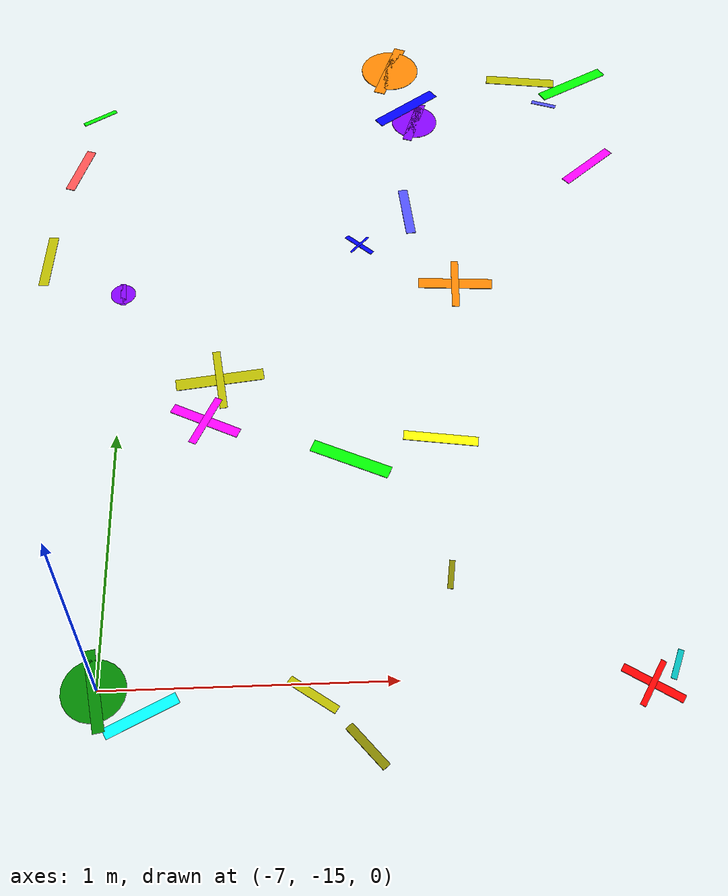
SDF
<sdf version="1.6">
 <world name="default">
  <model name="letter_S_634">
   <static>true</static>
   <pose>-6.85 -15.09 0.003 0 0 0.463</pose>
   <link name="link">
    <visual name="visual">
     <geometry><box><size>0.26 0.04 0.002</size></box></geometry>
     <material>
      <ambient>0.0 1.0 1.0 1</ambient>
      <diffuse>0.0 1.0 1.0 1</diffuse>
      <specular>0.1 0.1 0.1 1</specular>
     </material>
    </visual>
   </link>
  </model>
  <model name="letter_C_635">
   <static>true</static>
   <pose>-7.01 -15.00 0.003 0 0 1.755</pose>
   <link name="link">
    <visual name="visual">
     <geometry><box><size>0.29 0.04 0.002</size></box></geometry>
     <material>
      <ambient>0.0 0.5 0.0 1</ambient>
      <diffuse>0.0 0.5 0.0 1</diffuse>
      <specular>0.1 0.1 0.1 1</specular>
     </material>
    </visual>
    <visual name="visual2">
     <geometry><cylinder><radius>0.11</radius><length>0.002</length></cylinder></geometry>
     <material><ambient>0.0 0.5 0.0 1</ambient><diffuse>0.0 0.5 0.0 1</diffuse></material>
    </visual>
   </link>
  </model>
  <model name="letter_T_636">
   <static>true</static>
   <pose>-6.67 -13.95 0.011 0 0 5.831</pose>
   <link name="link">
    <visual name="visual">
     <geometry><box><size>0.28 0.04 0.002</size></box></geometry>
     <material>
      <ambient>1.0 0.0 1.0 1</ambient>
      <diffuse>1.0 0.0 1.0 1</diffuse>
      <specular>0.1 0.1 0.1 1</specular>
     </material>
    </visual>
    <visual name="visual2">
     <pose>0 0 0.001 0 0 1.57</pose>
     <geometry><box><size>0.22 0.03 0.001</size></box></geometry>
     <material><ambient>1.0 0.0 1.0 1</ambient><diffuse>1.0 0.0 1.0 1</diffuse></material>
    </visual>
   </link>
  </model>
  <model name="letter_A_637">
   <static>true</static>
   <pose>-6.62 -13.76 0.009 0 0 3.270</pose>
   <link name="link">
    <visual name="visual">
     <geometry><box><size>0.34 0.05 0.002</size></box></geometry>
     <material>
      <ambient>0.7 0.7 0.0 1</ambient>
      <diffuse>0.7 0.7 0.0 1</diffuse>
      <specular>0.1 0.1 0.1 1</specular>
     </material>
    </visual>
    <visual name="visual2">
     <pose>0 0 0.001 0 0 1.57</pose>
     <geometry><box><size>0.27 0.03 0.001</size></box></geometry>
     <material><ambient>0.7 0.7 0.0 1</ambient><diffuse>0.7 0.7 0.0 1</diffuse></material>
    </visual>
   </link>
  </model>
  <model name="letter_R_638">
   <static>true</static>
   <pose>-7.34 -13.13 0.008 0 0 4.639</pose>
   <link name="link">
    <visual name="visual">
     <geometry><box><size>0.26 0.04 0.002</size></box></geometry>
     <material>
      <ambient>0.7 0.7 0.0 1</ambient>
      <diffuse>0.7 0.7 0.0 1</diffuse>
      <specular>0.1 0.1 0.1 1</specular>
     </material>
    </visual>
   </link>
  </model>
  <model name="letter_Q_639">
   <static>true</static>
   <pose>-7.02 -13.32 0.009 0 0 4.771</pose>
   <link name="link">
    <visual name="visual">
     <geometry><box><size>0.11 0.02 0.002</size></box></geometry>
     <material>
      <ambient>0.5 0.0 1.0 1</ambient>
      <diffuse>0.5 0.0 1.0 1</diffuse>
      <specular>0.1 0.1 0.1 1</specular>
     </material>
    </visual>
    <visual name="visual2">
     <geometry><cylinder><radius>0.05</radius><length>0.002</length></cylinder></geometry>
     <material><ambient>0.5 0.0 1.0 1</ambient><diffuse>0.5 0.0 1.0 1</diffuse></material>
    </visual>
   </link>
  </model>
  <model name="letter_S_640">
   <static>true</static>
   <pose>-7.25 -12.61 0.012 0 0 4.393</pose>
   <link name="link">
    <visual name="visual">
     <geometry><box><size>0.24 0.04 0.002</size></box></geometry>
     <material>
      <ambient>1.0 0.3 0.3 1</ambient>
      <diffuse>1.0 0.3 0.3 1</diffuse>
      <specular>0.1 0.1 0.1 1</specular>
     </material>
    </visual>
   </link>
  </model>
  <model name="letter_V_643">
   <static>true</static>
   <pose>-7.19 -12.28 0.013 0 0 3.693</pose>
   <link name="link">
    <visual name="visual">
     <geometry><box><size>0.16 0.02 0.002</size></box></geometry>
     <material>
      <ambient>0.0 1.0 0.0 1</ambient>
      <diffuse>0.0 1.0 0.0 1</diffuse>
      <specular>0.1 0.1 0.1 1</specular>
     </material>
    </visual>
   </link>
  </model>
  <model name="letter_P_711">
   <static>true</static>
   <pose>-6.29 -15.04 0.007 0 0 2.524</pose>
   <link name="link">
    <visual name="visual">
     <geometry><box><size>0.19 0.03 0.002</size></box></geometry>
     <material>
      <ambient>0.7 0.7 0.0 1</ambient>
      <diffuse>0.7 0.7 0.0 1</diffuse>
      <specular>0.1 0.1 0.1 1</specular>
     </material>
    </visual>
   </link>
  </model>
  <model name="letter_D_712">
   <static>true</static>
   <pose>-6.12 -15.22 0.012 0 0 5.402</pose>
   <link name="link">
    <visual name="visual">
     <geometry><box><size>0.18 0.03 0.002</size></box></geometry>
     <material>
      <ambient>0.5 0.5 0.0 1</ambient>
      <diffuse>0.5 0.5 0.0 1</diffuse>
      <specular>0.1 0.1 0.1 1</specular>
     </material>
    </visual>
   </link>
  </model>
  <model name="letter_V_713">
   <static>true</static>
   <pose>-5.80 -14.62 0.004 0 0 1.417</pose>
   <link name="link">
    <visual name="visual">
     <geometry><box><size>0.11 0.02 0.002</size></box></geometry>
     <material>
      <ambient>0.5 0.5 0.0 1</ambient>
      <diffuse>0.5 0.5 0.0 1</diffuse>
      <specular>0.1 0.1 0.1 1</specular>
     </material>
    </visual>
   </link>
  </model>
  <model name="letter_N_714">
   <static>true</static>
   <pose>-5.79 -14.06 0.010 0 0 2.998</pose>
   <link name="link">
    <visual name="visual">
     <geometry><box><size>0.28 0.04 0.002</size></box></geometry>
     <material>
      <ambient>1.0 1.0 0.0 1</ambient>
      <diffuse>1.0 1.0 0.0 1</diffuse>
      <specular>0.1 0.1 0.1 1</specular>
     </material>
    </visual>
   </link>
  </model>
  <model name="letter_X_715">
   <static>true</static>
   <pose>-6.13 -14.14 0.012 0 0 5.852</pose>
   <link name="link">
    <visual name="visual">
     <geometry><box><size>0.31 0.05 0.002</size></box></geometry>
     <material>
      <ambient>0.0 1.0 0.0 1</ambient>
      <diffuse>0.0 1.0 0.0 1</diffuse>
      <specular>0.1 0.1 0.1 1</specular>
     </material>
    </visual>
   </link>
  </model>
  <model name="letter_E_716">
   <static>true</static>
   <pose>-6.05 -13.08 0.003 0 0 2.395</pose>
   <link name="link">
    <visual name="visual">
     <geometry><box><size>0.14 0.02 0.002</size></box></geometry>
     <material>
      <ambient>0.0 0.0 1.0 1</ambient>
      <diffuse>0.0 0.0 1.0 1</diffuse>
      <specular>0.1 0.1 0.1 1</specular>
     </material>
    </visual>
    <visual name="visual2">
     <pose>0 0 0.001 0 0 1.57</pose>
     <geometry><box><size>0.11 0.01 0.001</size></box></geometry>
     <material><ambient>0.0 0.0 1.0 1</ambient><diffuse>0.0 0.0 1.0 1</diffuse></material>
    </visual>
   </link>
  </model>
  <model name="letter_I_717">
   <static>true</static>
   <pose>-5.67 -13.31 0.009 0 0 3.086</pose>
   <link name="link">
    <visual name="visual">
     <geometry><box><size>0.30 0.05 0.002</size></box></geometry>
     <material>
      <ambient>1.0 0.5 0.0 1</ambient>
      <diffuse>1.0 0.5 0.0 1</diffuse>
      <specular>0.1 0.1 0.1 1</specular>
     </material>
    </visual>
    <visual name="visual2">
     <pose>0 0 0.001 0 0 1.57</pose>
     <geometry><box><size>0.24 0.03 0.001</size></box></geometry>
     <material><ambient>1.0 0.5 0.0 1</ambient><diffuse>1.0 0.5 0.0 1</diffuse></material>
    </visual>
   </link>
  </model>
  <model name="letter_D_718">
   <static>true</static>
   <pose>-5.84 -12.90 0.007 0 0 4.791</pose>
   <link name="link">
    <visual name="visual">
     <geometry><box><size>0.25 0.04 0.002</size></box></geometry>
     <material>
      <ambient>0.3 0.3 1.0 1</ambient>
      <diffuse>0.3 0.3 1.0 1</diffuse>
      <specular>0.1 0.1 0.1 1</specular>
     </material>
    </visual>
   </link>
  </model>
  <model name="letter_Q_719">
   <static>true</static>
   <pose>-5.77 -12.35 0.007 0 0 4.379</pose>
   <link name="link">
    <visual name="visual">
     <geometry><box><size>0.24 0.04 0.002</size></box></geometry>
     <material>
      <ambient>0.5 0.0 1.0 1</ambient>
      <diffuse>0.5 0.0 1.0 1</diffuse>
      <specular>0.1 0.1 0.1 1</specular>
     </material>
    </visual>
    <visual name="visual2">
     <geometry><cylinder><radius>0.10</radius><length>0.002</length></cylinder></geometry>
     <material><ambient>0.5 0.0 1.0 1</ambient><diffuse>0.5 0.0 1.0 1</diffuse></material>
    </visual>
   </link>
  </model>
  <model name="letter_V_720">
   <static>true</static>
   <pose>-5.80 -12.26 0.009 0 0 3.761</pose>
   <link name="link">
    <visual name="visual">
     <geometry><box><size>0.32 0.05 0.002</size></box></geometry>
     <material>
      <ambient>0.0 0.0 1.0 1</ambient>
      <diffuse>0.0 0.0 1.0 1</diffuse>
      <specular>0.1 0.1 0.1 1</specular>
     </material>
    </visual>
   </link>
  </model>
  <model name="letter_Q_721">
   <static>true</static>
   <pose>-5.86 -12.00 0.007 0 0 4.351</pose>
   <link name="link">
    <visual name="visual">
     <geometry><box><size>0.32 0.05 0.002</size></box></geometry>
     <material>
      <ambient>1.0 0.5 0.0 1</ambient>
      <diffuse>1.0 0.5 0.0 1</diffuse>
      <specular>0.1 0.1 0.1 1</specular>
     </material>
    </visual>
    <visual name="visual2">
     <geometry><cylinder><radius>0.13</radius><length>0.002</length></cylinder></geometry>
     <material><ambient>1.0 0.5 0.0 1</ambient><diffuse>1.0 0.5 0.0 1</diffuse></material>
    </visual>
   </link>
  </model>
  <model name="letter_L_786">
   <static>true</static>
   <pose>-5.17 -15.04 0.006 0 0 5.712</pose>
   <link name="link">
    <visual name="visual">
     <geometry><box><size>0.22 0.03 0.002</size></box></geometry>
     <material>
      <ambient>1.0 0.0 0.0 1</ambient>
      <diffuse>1.0 0.0 0.0 1</diffuse>
      <specular>0.1 0.1 0.1 1</specular>
     </material>
    </visual>
    <visual name="visual2">
     <pose>0 0 0.001 0 0 1.57</pose>
     <geometry><box><size>0.18 0.02 0.001</size></box></geometry>
     <material><ambient>1.0 0.0 0.0 1</ambient><diffuse>1.0 0.0 0.0 1</diffuse></material>
    </visual>
   </link>
  </model>
  <model name="letter_V_787">
   <static>true</static>
   <pose>-5.08 -14.98 0.012 0 0 1.154</pose>
   <link name="link">
    <visual name="visual">
     <geometry><box><size>0.11 0.02 0.002</size></box></geometry>
     <material>
      <ambient>0.0 0.7 0.7 1</ambient>
      <diffuse>0.0 0.7 0.7 1</diffuse>
      <specular>0.1 0.1 0.1 1</specular>
     </material>
    </visual>
   </link>
  </model>
  <model name="letter_R_791">
   <static>true</static>
   <pose>-5.03 -12.66 0.011 0 0 3.837</pose>
   <link name="link">
    <visual name="visual">
     <geometry><box><size>0.28 0.04 0.002</size></box></geometry>
     <material>
      <ambient>1.0 0.0 1.0 1</ambient>
      <diffuse>1.0 0.0 1.0 1</diffuse>
      <specular>0.1 0.1 0.1 1</specular>
     </material>
    </visual>
   </link>
  </model>
  <model name="letter_Y_793">
   <static>true</static>
   <pose>-5.17 -12.26 0.012 0 0 2.798</pose>
   <link name="link">
    <visual name="visual">
     <geometry><box><size>0.11 0.02 0.002</size></box></geometry>
     <material>
      <ambient>0.3 0.3 1.0 1</ambient>
      <diffuse>0.3 0.3 1.0 1</diffuse>
      <specular>0.1 0.1 0.1 1</specular>
     </material>
    </visual>
   </link>
  </model>
  <model name="letter_P_794">
   <static>true</static>
   <pose>-5.26 -12.10 0.010 0 0 3.012</pose>
   <link name="link">
    <visual name="visual">
     <geometry><box><size>0.31 0.05 0.002</size></box></geometry>
     <material>
      <ambient>0.7 0.7 0.0 1</ambient>
      <diffuse>0.7 0.7 0.0 1</diffuse>
      <specular>0.1 0.1 0.1 1</specular>
     </material>
    </visual>
   </link>
  </model>
  <model name="letter_Z_795">
   <static>true</static>
   <pose>-5.02 -12.12 0.004 0 0 3.632</pose>
   <link name="link">
    <visual name="visual">
     <geometry><box><size>0.34 0.05 0.002</size></box></geometry>
     <material>
      <ambient>0.0 1.0 0.0 1</ambient>
      <diffuse>0.0 1.0 0.0 1</diffuse>
      <specular>0.1 0.1 0.1 1</specular>
     </material>
    </visual>
   </link>
  </model>
 </world>
</sdf>
